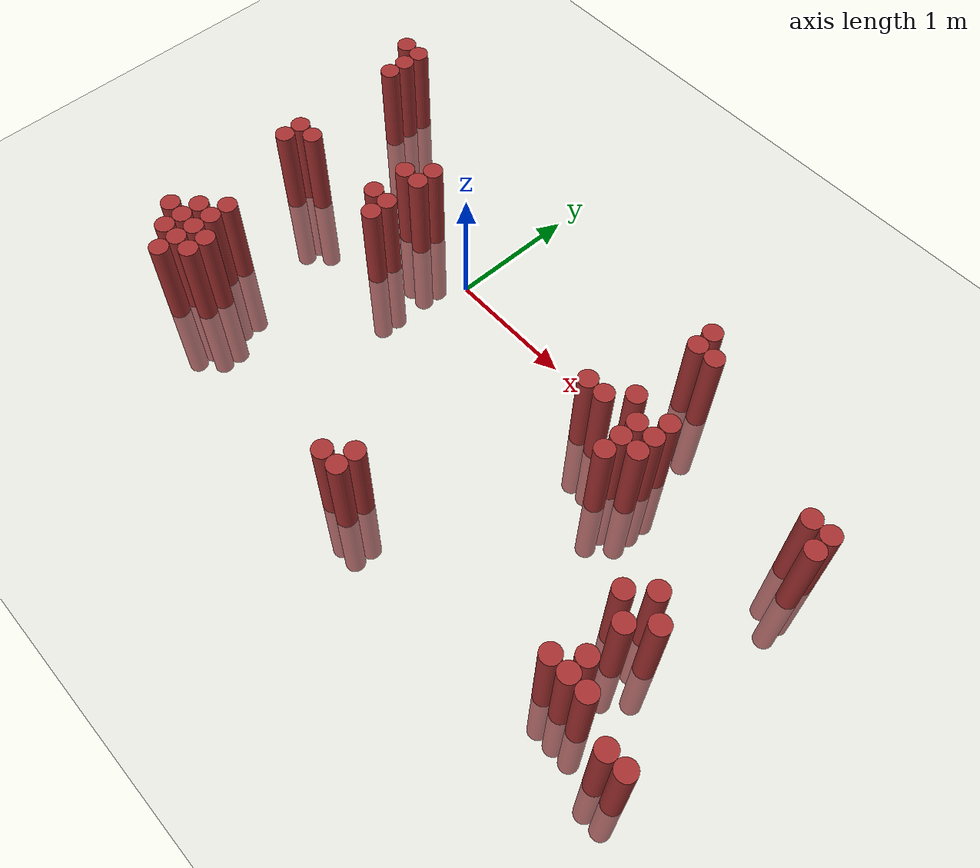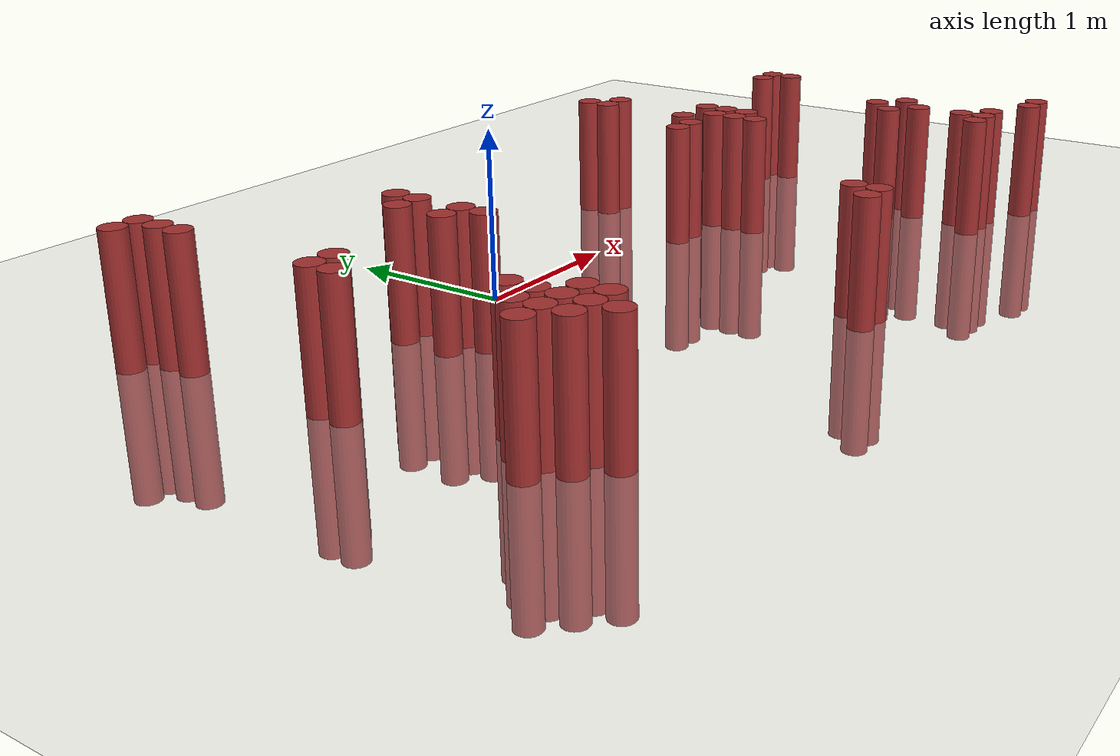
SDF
<sdf version="1.6">
 <world name="default">
  <model name="ground_plane">
   <static>1</static>
   <link name="link">
    <collision name="collision">
     <geometry><plane><normal>0 0 1</normal><size>100 100</size></plane></geometry>
     <surface><friction><ode><mu>100</mu><mu2>50</mu2></ode></friction></surface>
    </collision>
    <visual name="visual">
     <cast_shadows>0</cast_shadows>
     <geometry><plane><normal>0 0 1</normal><size>100 100</size></plane></geometry>
     <material>
      <script><uri>file://media/materials/scripts/gazebo.material</uri><name>Gazebo/Grey</name></script>
     </material>
    </visual>
   </link>
  </model>
  <model name="unit_cylinder_319">
   <static>1</static>
   <pose>-1.775000 0.925000 0.000000 0.000000 0.000000 0.000000</pose>
   <link name="link">
    <inertial>
     <mass>1</mass>
     <inertia><ixx>0.145833</ixx><ixy>0</ixy><ixz>0</ixz><iyy>0.145833</iyy><iyz>0</iyz><izz>0.125</izz></inertia>
    </inertial>
    <collision name="collision">
     <geometry><cylinder><radius>0.075000</radius><length>1.5</length></cylinder></geometry>
    </collision>
    <visual name="visual">
     <geometry><cylinder><radius>0.075000</radius><length>1.5</length></cylinder></geometry>
     <material>
      <ambient>0.648000 0.192000 0.192000 1</ambient>
      <diffuse>0.648000 0.192000 0.192000 1</diffuse>
     </material>
     <material>
      <script><name>Gazebo/Grey</name><uri>file://media/materials/scripts/gazebo.material</uri></script>
     </material>
    </visual>
   </link>
  </model>
  <model name="unit_cylinder_322">
   <static>1</static>
   <pose>-1.625000 -1.475000 0.000000 0.000000 0.000000 0.000000</pose>
   <link name="link">
    <inertial>
     <mass>1</mass>
     <inertia><ixx>0.145833</ixx><ixy>0</ixy><ixz>0</ixz><iyy>0.145833</iyy><iyz>0</iyz><izz>0.125</izz></inertia>
    </inertial>
    <collision name="collision">
     <geometry><cylinder><radius>0.075000</radius><length>1.5</length></cylinder></geometry>
    </collision>
    <visual name="visual">
     <geometry><cylinder><radius>0.075000</radius><length>1.5</length></cylinder></geometry>
     <material>
      <ambient>0.648000 0.192000 0.192000 1</ambient>
      <diffuse>0.648000 0.192000 0.192000 1</diffuse>
     </material>
     <material>
      <script><name>Gazebo/Grey</name><uri>file://media/materials/scripts/gazebo.material</uri></script>
     </material>
    </visual>
   </link>
  </model>
  <model name="unit_cylinder_323">
   <static>1</static>
   <pose>-1.625000 -0.425000 0.000000 0.000000 0.000000 0.000000</pose>
   <link name="link">
    <inertial>
     <mass>1</mass>
     <inertia><ixx>0.145833</ixx><ixy>0</ixy><ixz>0</ixz><iyy>0.145833</iyy><iyz>0</iyz><izz>0.125</izz></inertia>
    </inertial>
    <collision name="collision">
     <geometry><cylinder><radius>0.075000</radius><length>1.5</length></cylinder></geometry>
    </collision>
    <visual name="visual">
     <geometry><cylinder><radius>0.075000</radius><length>1.5</length></cylinder></geometry>
     <material>
      <ambient>0.648000 0.192000 0.192000 1</ambient>
      <diffuse>0.648000 0.192000 0.192000 1</diffuse>
     </material>
     <material>
      <script><name>Gazebo/Grey</name><uri>file://media/materials/scripts/gazebo.material</uri></script>
     </material>
    </visual>
   </link>
  </model>
  <model name="unit_cylinder_324">
   <static>1</static>
   <pose>-1.625000 -0.275000 0.000000 0.000000 0.000000 0.000000</pose>
   <link name="link">
    <inertial>
     <mass>1</mass>
     <inertia><ixx>0.145833</ixx><ixy>0</ixy><ixz>0</ixz><iyy>0.145833</iyy><iyz>0</iyz><izz>0.125</izz></inertia>
    </inertial>
    <collision name="collision">
     <geometry><cylinder><radius>0.075000</radius><length>1.5</length></cylinder></geometry>
    </collision>
    <visual name="visual">
     <geometry><cylinder><radius>0.075000</radius><length>1.5</length></cylinder></geometry>
     <material>
      <ambient>0.648000 0.192000 0.192000 1</ambient>
      <diffuse>0.648000 0.192000 0.192000 1</diffuse>
     </material>
     <material>
      <script><name>Gazebo/Grey</name><uri>file://media/materials/scripts/gazebo.material</uri></script>
     </material>
    </visual>
   </link>
  </model>
  <model name="unit_cylinder_325">
   <static>1</static>
   <pose>-1.625000 0.625000 0.000000 0.000000 0.000000 0.000000</pose>
   <link name="link">
    <inertial>
     <mass>1</mass>
     <inertia><ixx>0.145833</ixx><ixy>0</ixy><ixz>0</ixz><iyy>0.145833</iyy><iyz>0</iyz><izz>0.125</izz></inertia>
    </inertial>
    <collision name="collision">
     <geometry><cylinder><radius>0.075000</radius><length>1.5</length></cylinder></geometry>
    </collision>
    <visual name="visual">
     <geometry><cylinder><radius>0.075000</radius><length>1.5</length></cylinder></geometry>
     <material>
      <ambient>0.648000 0.192000 0.192000 1</ambient>
      <diffuse>0.648000 0.192000 0.192000 1</diffuse>
     </material>
     <material>
      <script><name>Gazebo/Grey</name><uri>file://media/materials/scripts/gazebo.material</uri></script>
     </material>
    </visual>
   </link>
  </model>
  <model name="unit_cylinder_326">
   <static>1</static>
   <pose>-1.625000 0.775000 0.000000 0.000000 0.000000 0.000000</pose>
   <link name="link">
    <inertial>
     <mass>1</mass>
     <inertia><ixx>0.145833</ixx><ixy>0</ixy><ixz>0</ixz><iyy>0.145833</iyy><iyz>0</iyz><izz>0.125</izz></inertia>
    </inertial>
    <collision name="collision">
     <geometry><cylinder><radius>0.075000</radius><length>1.5</length></cylinder></geometry>
    </collision>
    <visual name="visual">
     <geometry><cylinder><radius>0.075000</radius><length>1.5</length></cylinder></geometry>
     <material>
      <ambient>0.648000 0.192000 0.192000 1</ambient>
      <diffuse>0.648000 0.192000 0.192000 1</diffuse>
     </material>
     <material>
      <script><name>Gazebo/Grey</name><uri>file://media/materials/scripts/gazebo.material</uri></script>
     </material>
    </visual>
   </link>
  </model>
  <model name="unit_cylinder_327">
   <static>1</static>
   <pose>-1.625000 0.925000 0.000000 0.000000 0.000000 0.000000</pose>
   <link name="link">
    <inertial>
     <mass>1</mass>
     <inertia><ixx>0.145833</ixx><ixy>0</ixy><ixz>0</ixz><iyy>0.145833</iyy><iyz>0</iyz><izz>0.125</izz></inertia>
    </inertial>
    <collision name="collision">
     <geometry><cylinder><radius>0.075000</radius><length>1.5</length></cylinder></geometry>
    </collision>
    <visual name="visual">
     <geometry><cylinder><radius>0.075000</radius><length>1.5</length></cylinder></geometry>
     <material>
      <ambient>0.648000 0.192000 0.192000 1</ambient>
      <diffuse>0.648000 0.192000 0.192000 1</diffuse>
     </material>
     <material>
      <script><name>Gazebo/Grey</name><uri>file://media/materials/scripts/gazebo.material</uri></script>
     </material>
    </visual>
   </link>
  </model>
  <model name="unit_cylinder_330">
   <static>1</static>
   <pose>-1.475000 -1.625000 0.000000 0.000000 0.000000 0.000000</pose>
   <link name="link">
    <inertial>
     <mass>1</mass>
     <inertia><ixx>0.145833</ixx><ixy>0</ixy><ixz>0</ixz><iyy>0.145833</iyy><iyz>0</iyz><izz>0.125</izz></inertia>
    </inertial>
    <collision name="collision">
     <geometry><cylinder><radius>0.075000</radius><length>1.5</length></cylinder></geometry>
    </collision>
    <visual name="visual">
     <geometry><cylinder><radius>0.075000</radius><length>1.5</length></cylinder></geometry>
     <material>
      <ambient>0.648000 0.192000 0.192000 1</ambient>
      <diffuse>0.648000 0.192000 0.192000 1</diffuse>
     </material>
     <material>
      <script><name>Gazebo/Grey</name><uri>file://media/materials/scripts/gazebo.material</uri></script>
     </material>
    </visual>
   </link>
  </model>
  <model name="unit_cylinder_331">
   <static>1</static>
   <pose>-1.475000 -1.475000 0.000000 0.000000 0.000000 0.000000</pose>
   <link name="link">
    <inertial>
     <mass>1</mass>
     <inertia><ixx>0.145833</ixx><ixy>0</ixy><ixz>0</ixz><iyy>0.145833</iyy><iyz>0</iyz><izz>0.125</izz></inertia>
    </inertial>
    <collision name="collision">
     <geometry><cylinder><radius>0.075000</radius><length>1.5</length></cylinder></geometry>
    </collision>
    <visual name="visual">
     <geometry><cylinder><radius>0.075000</radius><length>1.5</length></cylinder></geometry>
     <material>
      <ambient>0.648000 0.192000 0.192000 1</ambient>
      <diffuse>0.648000 0.192000 0.192000 1</diffuse>
     </material>
     <material>
      <script><name>Gazebo/Grey</name><uri>file://media/materials/scripts/gazebo.material</uri></script>
     </material>
    </visual>
   </link>
  </model>
  <model name="unit_cylinder_332">
   <static>1</static>
   <pose>-1.475000 -1.325000 0.000000 0.000000 0.000000 0.000000</pose>
   <link name="link">
    <inertial>
     <mass>1</mass>
     <inertia><ixx>0.145833</ixx><ixy>0</ixy><ixz>0</ixz><iyy>0.145833</iyy><iyz>0</iyz><izz>0.125</izz></inertia>
    </inertial>
    <collision name="collision">
     <geometry><cylinder><radius>0.075000</radius><length>1.5</length></cylinder></geometry>
    </collision>
    <visual name="visual">
     <geometry><cylinder><radius>0.075000</radius><length>1.5</length></cylinder></geometry>
     <material>
      <ambient>0.648000 0.192000 0.192000 1</ambient>
      <diffuse>0.648000 0.192000 0.192000 1</diffuse>
     </material>
     <material>
      <script><name>Gazebo/Grey</name><uri>file://media/materials/scripts/gazebo.material</uri></script>
     </material>
    </visual>
   </link>
  </model>
  <model name="unit_cylinder_333">
   <static>1</static>
   <pose>-1.475000 -0.275000 0.000000 0.000000 0.000000 0.000000</pose>
   <link name="link">
    <inertial>
     <mass>1</mass>
     <inertia><ixx>0.145833</ixx><ixy>0</ixy><ixz>0</ixz><iyy>0.145833</iyy><iyz>0</iyz><izz>0.125</izz></inertia>
    </inertial>
    <collision name="collision">
     <geometry><cylinder><radius>0.075000</radius><length>1.5</length></cylinder></geometry>
    </collision>
    <visual name="visual">
     <geometry><cylinder><radius>0.075000</radius><length>1.5</length></cylinder></geometry>
     <material>
      <ambient>0.648000 0.192000 0.192000 1</ambient>
      <diffuse>0.648000 0.192000 0.192000 1</diffuse>
     </material>
     <material>
      <script><name>Gazebo/Grey</name><uri>file://media/materials/scripts/gazebo.material</uri></script>
     </material>
    </visual>
   </link>
  </model>
  <model name="unit_cylinder_336">
   <static>1</static>
   <pose>-1.325000 -1.775000 0.000000 0.000000 0.000000 0.000000</pose>
   <link name="link">
    <inertial>
     <mass>1</mass>
     <inertia><ixx>0.145833</ixx><ixy>0</ixy><ixz>0</ixz><iyy>0.145833</iyy><iyz>0</iyz><izz>0.125</izz></inertia>
    </inertial>
    <collision name="collision">
     <geometry><cylinder><radius>0.075000</radius><length>1.5</length></cylinder></geometry>
    </collision>
    <visual name="visual">
     <geometry><cylinder><radius>0.075000</radius><length>1.5</length></cylinder></geometry>
     <material>
      <ambient>0.648000 0.192000 0.192000 1</ambient>
      <diffuse>0.648000 0.192000 0.192000 1</diffuse>
     </material>
     <material>
      <script><name>Gazebo/Grey</name><uri>file://media/materials/scripts/gazebo.material</uri></script>
     </material>
    </visual>
   </link>
  </model>
  <model name="unit_cylinder_337">
   <static>1</static>
   <pose>-1.325000 -1.625000 0.000000 0.000000 0.000000 0.000000</pose>
   <link name="link">
    <inertial>
     <mass>1</mass>
     <inertia><ixx>0.145833</ixx><ixy>0</ixy><ixz>0</ixz><iyy>0.145833</iyy><iyz>0</iyz><izz>0.125</izz></inertia>
    </inertial>
    <collision name="collision">
     <geometry><cylinder><radius>0.075000</radius><length>1.5</length></cylinder></geometry>
    </collision>
    <visual name="visual">
     <geometry><cylinder><radius>0.075000</radius><length>1.5</length></cylinder></geometry>
     <material>
      <ambient>0.648000 0.192000 0.192000 1</ambient>
      <diffuse>0.648000 0.192000 0.192000 1</diffuse>
     </material>
     <material>
      <script><name>Gazebo/Grey</name><uri>file://media/materials/scripts/gazebo.material</uri></script>
     </material>
    </visual>
   </link>
  </model>
  <model name="unit_cylinder_338">
   <static>1</static>
   <pose>-1.325000 -1.475000 0.000000 0.000000 0.000000 0.000000</pose>
   <link name="link">
    <inertial>
     <mass>1</mass>
     <inertia><ixx>0.145833</ixx><ixy>0</ixy><ixz>0</ixz><iyy>0.145833</iyy><iyz>0</iyz><izz>0.125</izz></inertia>
    </inertial>
    <collision name="collision">
     <geometry><cylinder><radius>0.075000</radius><length>1.5</length></cylinder></geometry>
    </collision>
    <visual name="visual">
     <geometry><cylinder><radius>0.075000</radius><length>1.5</length></cylinder></geometry>
     <material>
      <ambient>0.648000 0.192000 0.192000 1</ambient>
      <diffuse>0.648000 0.192000 0.192000 1</diffuse>
     </material>
     <material>
      <script><name>Gazebo/Grey</name><uri>file://media/materials/scripts/gazebo.material</uri></script>
     </material>
    </visual>
   </link>
  </model>
  <model name="unit_cylinder_339">
   <static>1</static>
   <pose>-1.325000 -1.325000 0.000000 0.000000 0.000000 0.000000</pose>
   <link name="link">
    <inertial>
     <mass>1</mass>
     <inertia><ixx>0.145833</ixx><ixy>0</ixy><ixz>0</ixz><iyy>0.145833</iyy><iyz>0</iyz><izz>0.125</izz></inertia>
    </inertial>
    <collision name="collision">
     <geometry><cylinder><radius>0.075000</radius><length>1.5</length></cylinder></geometry>
    </collision>
    <visual name="visual">
     <geometry><cylinder><radius>0.075000</radius><length>1.5</length></cylinder></geometry>
     <material>
      <ambient>0.648000 0.192000 0.192000 1</ambient>
      <diffuse>0.648000 0.192000 0.192000 1</diffuse>
     </material>
     <material>
      <script><name>Gazebo/Grey</name><uri>file://media/materials/scripts/gazebo.material</uri></script>
     </material>
    </visual>
   </link>
  </model>
  <model name="unit_cylinder_340">
   <static>1</static>
   <pose>-1.325000 -1.175000 0.000000 0.000000 0.000000 0.000000</pose>
   <link name="link">
    <inertial>
     <mass>1</mass>
     <inertia><ixx>0.145833</ixx><ixy>0</ixy><ixz>0</ixz><iyy>0.145833</iyy><iyz>0</iyz><izz>0.125</izz></inertia>
    </inertial>
    <collision name="collision">
     <geometry><cylinder><radius>0.075000</radius><length>1.5</length></cylinder></geometry>
    </collision>
    <visual name="visual">
     <geometry><cylinder><radius>0.075000</radius><length>1.5</length></cylinder></geometry>
     <material>
      <ambient>0.648000 0.192000 0.192000 1</ambient>
      <diffuse>0.648000 0.192000 0.192000 1</diffuse>
     </material>
     <material>
      <script><name>Gazebo/Grey</name><uri>file://media/materials/scripts/gazebo.material</uri></script>
     </material>
    </visual>
   </link>
  </model>
  <model name="unit_cylinder_343">
   <static>1</static>
   <pose>-1.175000 -1.625000 0.000000 0.000000 0.000000 0.000000</pose>
   <link name="link">
    <inertial>
     <mass>1</mass>
     <inertia><ixx>0.145833</ixx><ixy>0</ixy><ixz>0</ixz><iyy>0.145833</iyy><iyz>0</iyz><izz>0.125</izz></inertia>
    </inertial>
    <collision name="collision">
     <geometry><cylinder><radius>0.075000</radius><length>1.5</length></cylinder></geometry>
    </collision>
    <visual name="visual">
     <geometry><cylinder><radius>0.075000</radius><length>1.5</length></cylinder></geometry>
     <material>
      <ambient>0.648000 0.192000 0.192000 1</ambient>
      <diffuse>0.648000 0.192000 0.192000 1</diffuse>
     </material>
     <material>
      <script><name>Gazebo/Grey</name><uri>file://media/materials/scripts/gazebo.material</uri></script>
     </material>
    </visual>
   </link>
  </model>
  <model name="unit_cylinder_344">
   <static>1</static>
   <pose>-1.175000 -1.475000 0.000000 0.000000 0.000000 0.000000</pose>
   <link name="link">
    <inertial>
     <mass>1</mass>
     <inertia><ixx>0.145833</ixx><ixy>0</ixy><ixz>0</ixz><iyy>0.145833</iyy><iyz>0</iyz><izz>0.125</izz></inertia>
    </inertial>
    <collision name="collision">
     <geometry><cylinder><radius>0.075000</radius><length>1.5</length></cylinder></geometry>
    </collision>
    <visual name="visual">
     <geometry><cylinder><radius>0.075000</radius><length>1.5</length></cylinder></geometry>
     <material>
      <ambient>0.648000 0.192000 0.192000 1</ambient>
      <diffuse>0.648000 0.192000 0.192000 1</diffuse>
     </material>
     <material>
      <script><name>Gazebo/Grey</name><uri>file://media/materials/scripts/gazebo.material</uri></script>
     </material>
    </visual>
   </link>
  </model>
  <model name="unit_cylinder_349">
   <static>1</static>
   <pose>-0.725000 -0.275000 0.000000 0.000000 0.000000 0.000000</pose>
   <link name="link">
    <inertial>
     <mass>1</mass>
     <inertia><ixx>0.145833</ixx><ixy>0</ixy><ixz>0</ixz><iyy>0.145833</iyy><iyz>0</iyz><izz>0.125</izz></inertia>
    </inertial>
    <collision name="collision">
     <geometry><cylinder><radius>0.075000</radius><length>1.5</length></cylinder></geometry>
    </collision>
    <visual name="visual">
     <geometry><cylinder><radius>0.075000</radius><length>1.5</length></cylinder></geometry>
     <material>
      <ambient>0.648000 0.192000 0.192000 1</ambient>
      <diffuse>0.648000 0.192000 0.192000 1</diffuse>
     </material>
     <material>
      <script><name>Gazebo/Grey</name><uri>file://media/materials/scripts/gazebo.material</uri></script>
     </material>
    </visual>
   </link>
  </model>
  <model name="unit_cylinder_350">
   <static>1</static>
   <pose>-0.725000 0.025000 0.000000 0.000000 0.000000 0.000000</pose>
   <link name="link">
    <inertial>
     <mass>1</mass>
     <inertia><ixx>0.145833</ixx><ixy>0</ixy><ixz>0</ixz><iyy>0.145833</iyy><iyz>0</iyz><izz>0.125</izz></inertia>
    </inertial>
    <collision name="collision">
     <geometry><cylinder><radius>0.075000</radius><length>1.5</length></cylinder></geometry>
    </collision>
    <visual name="visual">
     <geometry><cylinder><radius>0.075000</radius><length>1.5</length></cylinder></geometry>
     <material>
      <ambient>0.648000 0.192000 0.192000 1</ambient>
      <diffuse>0.648000 0.192000 0.192000 1</diffuse>
     </material>
     <material>
      <script><name>Gazebo/Grey</name><uri>file://media/materials/scripts/gazebo.material</uri></script>
     </material>
    </visual>
   </link>
  </model>
  <model name="unit_cylinder_353">
   <static>1</static>
   <pose>-0.575000 -0.425000 0.000000 0.000000 0.000000 0.000000</pose>
   <link name="link">
    <inertial>
     <mass>1</mass>
     <inertia><ixx>0.145833</ixx><ixy>0</ixy><ixz>0</ixz><iyy>0.145833</iyy><iyz>0</iyz><izz>0.125</izz></inertia>
    </inertial>
    <collision name="collision">
     <geometry><cylinder><radius>0.075000</radius><length>1.5</length></cylinder></geometry>
    </collision>
    <visual name="visual">
     <geometry><cylinder><radius>0.075000</radius><length>1.5</length></cylinder></geometry>
     <material>
      <ambient>0.648000 0.192000 0.192000 1</ambient>
      <diffuse>0.648000 0.192000 0.192000 1</diffuse>
     </material>
     <material>
      <script><name>Gazebo/Grey</name><uri>file://media/materials/scripts/gazebo.material</uri></script>
     </material>
    </visual>
   </link>
  </model>
  <model name="unit_cylinder_354">
   <static>1</static>
   <pose>-0.575000 -0.275000 0.000000 0.000000 0.000000 0.000000</pose>
   <link name="link">
    <inertial>
     <mass>1</mass>
     <inertia><ixx>0.145833</ixx><ixy>0</ixy><ixz>0</ixz><iyy>0.145833</iyy><iyz>0</iyz><izz>0.125</izz></inertia>
    </inertial>
    <collision name="collision">
     <geometry><cylinder><radius>0.075000</radius><length>1.5</length></cylinder></geometry>
    </collision>
    <visual name="visual">
     <geometry><cylinder><radius>0.075000</radius><length>1.5</length></cylinder></geometry>
     <material>
      <ambient>0.648000 0.192000 0.192000 1</ambient>
      <diffuse>0.648000 0.192000 0.192000 1</diffuse>
     </material>
     <material>
      <script><name>Gazebo/Grey</name><uri>file://media/materials/scripts/gazebo.material</uri></script>
     </material>
    </visual>
   </link>
  </model>
  <model name="unit_cylinder_355">
   <static>1</static>
   <pose>-0.575000 0.025000 0.000000 0.000000 0.000000 0.000000</pose>
   <link name="link">
    <inertial>
     <mass>1</mass>
     <inertia><ixx>0.145833</ixx><ixy>0</ixy><ixz>0</ixz><iyy>0.145833</iyy><iyz>0</iyz><izz>0.125</izz></inertia>
    </inertial>
    <collision name="collision">
     <geometry><cylinder><radius>0.075000</radius><length>1.5</length></cylinder></geometry>
    </collision>
    <visual name="visual">
     <geometry><cylinder><radius>0.075000</radius><length>1.5</length></cylinder></geometry>
     <material>
      <ambient>0.648000 0.192000 0.192000 1</ambient>
      <diffuse>0.648000 0.192000 0.192000 1</diffuse>
     </material>
     <material>
      <script><name>Gazebo/Grey</name><uri>file://media/materials/scripts/gazebo.material</uri></script>
     </material>
    </visual>
   </link>
  </model>
  <model name="unit_cylinder_356">
   <static>1</static>
   <pose>-0.575000 0.175000 0.000000 0.000000 0.000000 0.000000</pose>
   <link name="link">
    <inertial>
     <mass>1</mass>
     <inertia><ixx>0.145833</ixx><ixy>0</ixy><ixz>0</ixz><iyy>0.145833</iyy><iyz>0</iyz><izz>0.125</izz></inertia>
    </inertial>
    <collision name="collision">
     <geometry><cylinder><radius>0.075000</radius><length>1.5</length></cylinder></geometry>
    </collision>
    <visual name="visual">
     <geometry><cylinder><radius>0.075000</radius><length>1.5</length></cylinder></geometry>
     <material>
      <ambient>0.648000 0.192000 0.192000 1</ambient>
      <diffuse>0.648000 0.192000 0.192000 1</diffuse>
     </material>
     <material>
      <script><name>Gazebo/Grey</name><uri>file://media/materials/scripts/gazebo.material</uri></script>
     </material>
    </visual>
   </link>
  </model>
  <model name="unit_cylinder_371">
   <static>1</static>
   <pose>0.775000 -1.925000 0.000000 0.000000 0.000000 0.000000</pose>
   <link name="link">
    <inertial>
     <mass>1</mass>
     <inertia><ixx>0.145833</ixx><ixy>0</ixy><ixz>0</ixz><iyy>0.145833</iyy><iyz>0</iyz><izz>0.125</izz></inertia>
    </inertial>
    <collision name="collision">
     <geometry><cylinder><radius>0.075000</radius><length>1.5</length></cylinder></geometry>
    </collision>
    <visual name="visual">
     <geometry><cylinder><radius>0.075000</radius><length>1.5</length></cylinder></geometry>
     <material>
      <ambient>0.648000 0.192000 0.192000 1</ambient>
      <diffuse>0.648000 0.192000 0.192000 1</diffuse>
     </material>
     <material>
      <script><name>Gazebo/Grey</name><uri>file://media/materials/scripts/gazebo.material</uri></script>
     </material>
    </visual>
   </link>
  </model>
  <model name="unit_cylinder_374">
   <static>1</static>
   <pose>0.925000 -1.925000 0.000000 0.000000 0.000000 0.000000</pose>
   <link name="link">
    <inertial>
     <mass>1</mass>
     <inertia><ixx>0.145833</ixx><ixy>0</ixy><ixz>0</ixz><iyy>0.145833</iyy><iyz>0</iyz><izz>0.125</izz></inertia>
    </inertial>
    <collision name="collision">
     <geometry><cylinder><radius>0.075000</radius><length>1.5</length></cylinder></geometry>
    </collision>
    <visual name="visual">
     <geometry><cylinder><radius>0.075000</radius><length>1.5</length></cylinder></geometry>
     <material>
      <ambient>0.648000 0.192000 0.192000 1</ambient>
      <diffuse>0.648000 0.192000 0.192000 1</diffuse>
     </material>
     <material>
      <script><name>Gazebo/Grey</name><uri>file://media/materials/scripts/gazebo.material</uri></script>
     </material>
    </visual>
   </link>
  </model>
  <model name="unit_cylinder_375">
   <static>1</static>
   <pose>0.925000 -1.775000 0.000000 0.000000 0.000000 0.000000</pose>
   <link name="link">
    <inertial>
     <mass>1</mass>
     <inertia><ixx>0.145833</ixx><ixy>0</ixy><ixz>0</ixz><iyy>0.145833</iyy><iyz>0</iyz><izz>0.125</izz></inertia>
    </inertial>
    <collision name="collision">
     <geometry><cylinder><radius>0.075000</radius><length>1.5</length></cylinder></geometry>
    </collision>
    <visual name="visual">
     <geometry><cylinder><radius>0.075000</radius><length>1.5</length></cylinder></geometry>
     <material>
      <ambient>0.648000 0.192000 0.192000 1</ambient>
      <diffuse>0.648000 0.192000 0.192000 1</diffuse>
     </material>
     <material>
      <script><name>Gazebo/Grey</name><uri>file://media/materials/scripts/gazebo.material</uri></script>
     </material>
    </visual>
   </link>
  </model>
  <model name="unit_cylinder_393">
   <static>1</static>
   <pose>1.525000 -0.275000 0.000000 0.000000 0.000000 0.000000</pose>
   <link name="link">
    <inertial>
     <mass>1</mass>
     <inertia><ixx>0.145833</ixx><ixy>0</ixy><ixz>0</ixz><iyy>0.145833</iyy><iyz>0</iyz><izz>0.125</izz></inertia>
    </inertial>
    <collision name="collision">
     <geometry><cylinder><radius>0.075000</radius><length>1.5</length></cylinder></geometry>
    </collision>
    <visual name="visual">
     <geometry><cylinder><radius>0.075000</radius><length>1.5</length></cylinder></geometry>
     <material>
      <ambient>0.648000 0.192000 0.192000 1</ambient>
      <diffuse>0.648000 0.192000 0.192000 1</diffuse>
     </material>
     <material>
      <script><name>Gazebo/Grey</name><uri>file://media/materials/scripts/gazebo.material</uri></script>
     </material>
    </visual>
   </link>
  </model>
  <model name="unit_cylinder_396">
   <static>1</static>
   <pose>1.675000 -0.275000 0.000000 0.000000 0.000000 0.000000</pose>
   <link name="link">
    <inertial>
     <mass>1</mass>
     <inertia><ixx>0.145833</ixx><ixy>0</ixy><ixz>0</ixz><iyy>0.145833</iyy><iyz>0</iyz><izz>0.125</izz></inertia>
    </inertial>
    <collision name="collision">
     <geometry><cylinder><radius>0.075000</radius><length>1.5</length></cylinder></geometry>
    </collision>
    <visual name="visual">
     <geometry><cylinder><radius>0.075000</radius><length>1.5</length></cylinder></geometry>
     <material>
      <ambient>0.648000 0.192000 0.192000 1</ambient>
      <diffuse>0.648000 0.192000 0.192000 1</diffuse>
     </material>
     <material>
      <script><name>Gazebo/Grey</name><uri>file://media/materials/scripts/gazebo.material</uri></script>
     </material>
    </visual>
   </link>
  </model>
  <model name="unit_cylinder_398">
   <static>1</static>
   <pose>1.825000 -0.125000 0.000000 0.000000 0.000000 0.000000</pose>
   <link name="link">
    <inertial>
     <mass>1</mass>
     <inertia><ixx>0.145833</ixx><ixy>0</ixy><ixz>0</ixz><iyy>0.145833</iyy><iyz>0</iyz><izz>0.125</izz></inertia>
    </inertial>
    <collision name="collision">
     <geometry><cylinder><radius>0.075000</radius><length>1.5</length></cylinder></geometry>
    </collision>
    <visual name="visual">
     <geometry><cylinder><radius>0.075000</radius><length>1.5</length></cylinder></geometry>
     <material>
      <ambient>0.648000 0.192000 0.192000 1</ambient>
      <diffuse>0.648000 0.192000 0.192000 1</diffuse>
     </material>
     <material>
      <script><name>Gazebo/Grey</name><uri>file://media/materials/scripts/gazebo.material</uri></script>
     </material>
    </visual>
   </link>
  </model>
  <model name="unit_cylinder_399">
   <static>1</static>
   <pose>1.825000 0.475000 0.000000 0.000000 0.000000 0.000000</pose>
   <link name="link">
    <inertial>
     <mass>1</mass>
     <inertia><ixx>0.145833</ixx><ixy>0</ixy><ixz>0</ixz><iyy>0.145833</iyy><iyz>0</iyz><izz>0.125</izz></inertia>
    </inertial>
    <collision name="collision">
     <geometry><cylinder><radius>0.075000</radius><length>1.5</length></cylinder></geometry>
    </collision>
    <visual name="visual">
     <geometry><cylinder><radius>0.075000</radius><length>1.5</length></cylinder></geometry>
     <material>
      <ambient>0.648000 0.192000 0.192000 1</ambient>
      <diffuse>0.648000 0.192000 0.192000 1</diffuse>
     </material>
     <material>
      <script><name>Gazebo/Grey</name><uri>file://media/materials/scripts/gazebo.material</uri></script>
     </material>
    </visual>
   </link>
  </model>
  <model name="unit_cylinder_400">
   <static>1</static>
   <pose>1.825000 0.625000 0.000000 0.000000 0.000000 0.000000</pose>
   <link name="link">
    <inertial>
     <mass>1</mass>
     <inertia><ixx>0.145833</ixx><ixy>0</ixy><ixz>0</ixz><iyy>0.145833</iyy><iyz>0</iyz><izz>0.125</izz></inertia>
    </inertial>
    <collision name="collision">
     <geometry><cylinder><radius>0.075000</radius><length>1.5</length></cylinder></geometry>
    </collision>
    <visual name="visual">
     <geometry><cylinder><radius>0.075000</radius><length>1.5</length></cylinder></geometry>
     <material>
      <ambient>0.648000 0.192000 0.192000 1</ambient>
      <diffuse>0.648000 0.192000 0.192000 1</diffuse>
     </material>
     <material>
      <script><name>Gazebo/Grey</name><uri>file://media/materials/scripts/gazebo.material</uri></script>
     </material>
    </visual>
   </link>
  </model>
  <model name="unit_cylinder_402">
   <static>1</static>
   <pose>1.975000 -0.575000 0.000000 0.000000 0.000000 0.000000</pose>
   <link name="link">
    <inertial>
     <mass>1</mass>
     <inertia><ixx>0.145833</ixx><ixy>0</ixy><ixz>0</ixz><iyy>0.145833</iyy><iyz>0</iyz><izz>0.125</izz></inertia>
    </inertial>
    <collision name="collision">
     <geometry><cylinder><radius>0.075000</radius><length>1.5</length></cylinder></geometry>
    </collision>
    <visual name="visual">
     <geometry><cylinder><radius>0.075000</radius><length>1.5</length></cylinder></geometry>
     <material>
      <ambient>0.648000 0.192000 0.192000 1</ambient>
      <diffuse>0.648000 0.192000 0.192000 1</diffuse>
     </material>
     <material>
      <script><name>Gazebo/Grey</name><uri>file://media/materials/scripts/gazebo.material</uri></script>
     </material>
    </visual>
   </link>
  </model>
  <model name="unit_cylinder_403">
   <static>1</static>
   <pose>1.975000 -0.425000 0.000000 0.000000 0.000000 0.000000</pose>
   <link name="link">
    <inertial>
     <mass>1</mass>
     <inertia><ixx>0.145833</ixx><ixy>0</ixy><ixz>0</ixz><iyy>0.145833</iyy><iyz>0</iyz><izz>0.125</izz></inertia>
    </inertial>
    <collision name="collision">
     <geometry><cylinder><radius>0.075000</radius><length>1.5</length></cylinder></geometry>
    </collision>
    <visual name="visual">
     <geometry><cylinder><radius>0.075000</radius><length>1.5</length></cylinder></geometry>
     <material>
      <ambient>0.648000 0.192000 0.192000 1</ambient>
      <diffuse>0.648000 0.192000 0.192000 1</diffuse>
     </material>
     <material>
      <script><name>Gazebo/Grey</name><uri>file://media/materials/scripts/gazebo.material</uri></script>
     </material>
    </visual>
   </link>
  </model>
  <model name="unit_cylinder_404">
   <static>1</static>
   <pose>1.975000 -0.275000 0.000000 0.000000 0.000000 0.000000</pose>
   <link name="link">
    <inertial>
     <mass>1</mass>
     <inertia><ixx>0.145833</ixx><ixy>0</ixy><ixz>0</ixz><iyy>0.145833</iyy><iyz>0</iyz><izz>0.125</izz></inertia>
    </inertial>
    <collision name="collision">
     <geometry><cylinder><radius>0.075000</radius><length>1.5</length></cylinder></geometry>
    </collision>
    <visual name="visual">
     <geometry><cylinder><radius>0.075000</radius><length>1.5</length></cylinder></geometry>
     <material>
      <ambient>0.648000 0.192000 0.192000 1</ambient>
      <diffuse>0.648000 0.192000 0.192000 1</diffuse>
     </material>
     <material>
      <script><name>Gazebo/Grey</name><uri>file://media/materials/scripts/gazebo.material</uri></script>
     </material>
    </visual>
   </link>
  </model>
  <model name="unit_cylinder_405">
   <static>1</static>
   <pose>1.975000 0.475000 0.000000 0.000000 0.000000 0.000000</pose>
   <link name="link">
    <inertial>
     <mass>1</mass>
     <inertia><ixx>0.145833</ixx><ixy>0</ixy><ixz>0</ixz><iyy>0.145833</iyy><iyz>0</iyz><izz>0.125</izz></inertia>
    </inertial>
    <collision name="collision">
     <geometry><cylinder><radius>0.075000</radius><length>1.5</length></cylinder></geometry>
    </collision>
    <visual name="visual">
     <geometry><cylinder><radius>0.075000</radius><length>1.5</length></cylinder></geometry>
     <material>
      <ambient>0.648000 0.192000 0.192000 1</ambient>
      <diffuse>0.648000 0.192000 0.192000 1</diffuse>
     </material>
     <material>
      <script><name>Gazebo/Grey</name><uri>file://media/materials/scripts/gazebo.material</uri></script>
     </material>
    </visual>
   </link>
  </model>
  <model name="unit_cylinder_408">
   <static>1</static>
   <pose>2.125000 -0.425000 0.000000 0.000000 0.000000 0.000000</pose>
   <link name="link">
    <inertial>
     <mass>1</mass>
     <inertia><ixx>0.145833</ixx><ixy>0</ixy><ixz>0</ixz><iyy>0.145833</iyy><iyz>0</iyz><izz>0.125</izz></inertia>
    </inertial>
    <collision name="collision">
     <geometry><cylinder><radius>0.075000</radius><length>1.5</length></cylinder></geometry>
    </collision>
    <visual name="visual">
     <geometry><cylinder><radius>0.075000</radius><length>1.5</length></cylinder></geometry>
     <material>
      <ambient>0.648000 0.192000 0.192000 1</ambient>
      <diffuse>0.648000 0.192000 0.192000 1</diffuse>
     </material>
     <material>
      <script><name>Gazebo/Grey</name><uri>file://media/materials/scripts/gazebo.material</uri></script>
     </material>
    </visual>
   </link>
  </model>
  <model name="unit_cylinder_409">
   <static>1</static>
   <pose>2.125000 -0.275000 0.000000 0.000000 0.000000 0.000000</pose>
   <link name="link">
    <inertial>
     <mass>1</mass>
     <inertia><ixx>0.145833</ixx><ixy>0</ixy><ixz>0</ixz><iyy>0.145833</iyy><iyz>0</iyz><izz>0.125</izz></inertia>
    </inertial>
    <collision name="collision">
     <geometry><cylinder><radius>0.075000</radius><length>1.5</length></cylinder></geometry>
    </collision>
    <visual name="visual">
     <geometry><cylinder><radius>0.075000</radius><length>1.5</length></cylinder></geometry>
     <material>
      <ambient>0.648000 0.192000 0.192000 1</ambient>
      <diffuse>0.648000 0.192000 0.192000 1</diffuse>
     </material>
     <material>
      <script><name>Gazebo/Grey</name><uri>file://media/materials/scripts/gazebo.material</uri></script>
     </material>
    </visual>
   </link>
  </model>
  <model name="unit_cylinder_410">
   <static>1</static>
   <pose>2.125000 -0.125000 0.000000 0.000000 0.000000 0.000000</pose>
   <link name="link">
    <inertial>
     <mass>1</mass>
     <inertia><ixx>0.145833</ixx><ixy>0</ixy><ixz>0</ixz><iyy>0.145833</iyy><iyz>0</iyz><izz>0.125</izz></inertia>
    </inertial>
    <collision name="collision">
     <geometry><cylinder><radius>0.075000</radius><length>1.5</length></cylinder></geometry>
    </collision>
    <visual name="visual">
     <geometry><cylinder><radius>0.075000</radius><length>1.5</length></cylinder></geometry>
     <material>
      <ambient>0.648000 0.192000 0.192000 1</ambient>
      <diffuse>0.648000 0.192000 0.192000 1</diffuse>
     </material>
     <material>
      <script><name>Gazebo/Grey</name><uri>file://media/materials/scripts/gazebo.material</uri></script>
     </material>
    </visual>
   </link>
  </model>
  <model name="unit_cylinder_419">
   <static>1</static>
   <pose>2.725000 -1.775000 0.000000 0.000000 0.000000 0.000000</pose>
   <link name="link">
    <inertial>
     <mass>1</mass>
     <inertia><ixx>0.145833</ixx><ixy>0</ixy><ixz>0</ixz><iyy>0.145833</iyy><iyz>0</iyz><izz>0.125</izz></inertia>
    </inertial>
    <collision name="collision">
     <geometry><cylinder><radius>0.075000</radius><length>1.5</length></cylinder></geometry>
    </collision>
    <visual name="visual">
     <geometry><cylinder><radius>0.075000</radius><length>1.5</length></cylinder></geometry>
     <material>
      <ambient>0.648000 0.192000 0.192000 1</ambient>
      <diffuse>0.648000 0.192000 0.192000 1</diffuse>
     </material>
     <material>
      <script><name>Gazebo/Grey</name><uri>file://media/materials/scripts/gazebo.material</uri></script>
     </material>
    </visual>
   </link>
  </model>
  <model name="unit_cylinder_420">
   <static>1</static>
   <pose>2.725000 -1.175000 0.000000 0.000000 0.000000 0.000000</pose>
   <link name="link">
    <inertial>
     <mass>1</mass>
     <inertia><ixx>0.145833</ixx><ixy>0</ixy><ixz>0</ixz><iyy>0.145833</iyy><iyz>0</iyz><izz>0.125</izz></inertia>
    </inertial>
    <collision name="collision">
     <geometry><cylinder><radius>0.075000</radius><length>1.5</length></cylinder></geometry>
    </collision>
    <visual name="visual">
     <geometry><cylinder><radius>0.075000</radius><length>1.5</length></cylinder></geometry>
     <material>
      <ambient>0.648000 0.192000 0.192000 1</ambient>
      <diffuse>0.648000 0.192000 0.192000 1</diffuse>
     </material>
     <material>
      <script><name>Gazebo/Grey</name><uri>file://media/materials/scripts/gazebo.material</uri></script>
     </material>
    </visual>
   </link>
  </model>
  <model name="unit_cylinder_424">
   <static>1</static>
   <pose>2.875000 -1.775000 0.000000 0.000000 0.000000 0.000000</pose>
   <link name="link">
    <inertial>
     <mass>1</mass>
     <inertia><ixx>0.145833</ixx><ixy>0</ixy><ixz>0</ixz><iyy>0.145833</iyy><iyz>0</iyz><izz>0.125</izz></inertia>
    </inertial>
    <collision name="collision">
     <geometry><cylinder><radius>0.075000</radius><length>1.5</length></cylinder></geometry>
    </collision>
    <visual name="visual">
     <geometry><cylinder><radius>0.075000</radius><length>1.5</length></cylinder></geometry>
     <material>
      <ambient>0.648000 0.192000 0.192000 1</ambient>
      <diffuse>0.648000 0.192000 0.192000 1</diffuse>
     </material>
     <material>
      <script><name>Gazebo/Grey</name><uri>file://media/materials/scripts/gazebo.material</uri></script>
     </material>
    </visual>
   </link>
  </model>
  <model name="unit_cylinder_425">
   <static>1</static>
   <pose>2.875000 -1.625000 0.000000 0.000000 0.000000 0.000000</pose>
   <link name="link">
    <inertial>
     <mass>1</mass>
     <inertia><ixx>0.145833</ixx><ixy>0</ixy><ixz>0</ixz><iyy>0.145833</iyy><iyz>0</iyz><izz>0.125</izz></inertia>
    </inertial>
    <collision name="collision">
     <geometry><cylinder><radius>0.075000</radius><length>1.5</length></cylinder></geometry>
    </collision>
    <visual name="visual">
     <geometry><cylinder><radius>0.075000</radius><length>1.5</length></cylinder></geometry>
     <material>
      <ambient>0.648000 0.192000 0.192000 1</ambient>
      <diffuse>0.648000 0.192000 0.192000 1</diffuse>
     </material>
     <material>
      <script><name>Gazebo/Grey</name><uri>file://media/materials/scripts/gazebo.material</uri></script>
     </material>
    </visual>
   </link>
  </model>
  <model name="unit_cylinder_426">
   <static>1</static>
   <pose>2.875000 -1.325000 0.000000 0.000000 0.000000 0.000000</pose>
   <link name="link">
    <inertial>
     <mass>1</mass>
     <inertia><ixx>0.145833</ixx><ixy>0</ixy><ixz>0</ixz><iyy>0.145833</iyy><iyz>0</iyz><izz>0.125</izz></inertia>
    </inertial>
    <collision name="collision">
     <geometry><cylinder><radius>0.075000</radius><length>1.5</length></cylinder></geometry>
    </collision>
    <visual name="visual">
     <geometry><cylinder><radius>0.075000</radius><length>1.5</length></cylinder></geometry>
     <material>
      <ambient>0.648000 0.192000 0.192000 1</ambient>
      <diffuse>0.648000 0.192000 0.192000 1</diffuse>
     </material>
     <material>
      <script><name>Gazebo/Grey</name><uri>file://media/materials/scripts/gazebo.material</uri></script>
     </material>
    </visual>
   </link>
  </model>
  <model name="unit_cylinder_427">
   <static>1</static>
   <pose>2.875000 -1.025000 0.000000 0.000000 0.000000 0.000000</pose>
   <link name="link">
    <inertial>
     <mass>1</mass>
     <inertia><ixx>0.145833</ixx><ixy>0</ixy><ixz>0</ixz><iyy>0.145833</iyy><iyz>0</iyz><izz>0.125</izz></inertia>
    </inertial>
    <collision name="collision">
     <geometry><cylinder><radius>0.075000</radius><length>1.5</length></cylinder></geometry>
    </collision>
    <visual name="visual">
     <geometry><cylinder><radius>0.075000</radius><length>1.5</length></cylinder></geometry>
     <material>
      <ambient>0.648000 0.192000 0.192000 1</ambient>
      <diffuse>0.648000 0.192000 0.192000 1</diffuse>
     </material>
     <material>
      <script><name>Gazebo/Grey</name><uri>file://media/materials/scripts/gazebo.material</uri></script>
     </material>
    </visual>
   </link>
  </model>
  <model name="unit_cylinder_433">
   <static>1</static>
   <pose>3.025000 -1.775000 0.000000 0.000000 0.000000 0.000000</pose>
   <link name="link">
    <inertial>
     <mass>1</mass>
     <inertia><ixx>0.145833</ixx><ixy>0</ixy><ixz>0</ixz><iyy>0.145833</iyy><iyz>0</iyz><izz>0.125</izz></inertia>
    </inertial>
    <collision name="collision">
     <geometry><cylinder><radius>0.075000</radius><length>1.5</length></cylinder></geometry>
    </collision>
    <visual name="visual">
     <geometry><cylinder><radius>0.075000</radius><length>1.5</length></cylinder></geometry>
     <material>
      <ambient>0.648000 0.192000 0.192000 1</ambient>
      <diffuse>0.648000 0.192000 0.192000 1</diffuse>
     </material>
     <material>
      <script><name>Gazebo/Grey</name><uri>file://media/materials/scripts/gazebo.material</uri></script>
     </material>
    </visual>
   </link>
  </model>
  <model name="unit_cylinder_434">
   <static>1</static>
   <pose>3.025000 -1.175000 0.000000 0.000000 0.000000 0.000000</pose>
   <link name="link">
    <inertial>
     <mass>1</mass>
     <inertia><ixx>0.145833</ixx><ixy>0</ixy><ixz>0</ixz><iyy>0.145833</iyy><iyz>0</iyz><izz>0.125</izz></inertia>
    </inertial>
    <collision name="collision">
     <geometry><cylinder><radius>0.075000</radius><length>1.5</length></cylinder></geometry>
    </collision>
    <visual name="visual">
     <geometry><cylinder><radius>0.075000</radius><length>1.5</length></cylinder></geometry>
     <material>
      <ambient>0.648000 0.192000 0.192000 1</ambient>
      <diffuse>0.648000 0.192000 0.192000 1</diffuse>
     </material>
     <material>
      <script><name>Gazebo/Grey</name><uri>file://media/materials/scripts/gazebo.material</uri></script>
     </material>
    </visual>
   </link>
  </model>
  <model name="unit_cylinder_437">
   <static>1</static>
   <pose>3.175000 0.025000 0.000000 0.000000 0.000000 0.000000</pose>
   <link name="link">
    <inertial>
     <mass>1</mass>
     <inertia><ixx>0.145833</ixx><ixy>0</ixy><ixz>0</ixz><iyy>0.145833</iyy><iyz>0</iyz><izz>0.125</izz></inertia>
    </inertial>
    <collision name="collision">
     <geometry><cylinder><radius>0.075000</radius><length>1.5</length></cylinder></geometry>
    </collision>
    <visual name="visual">
     <geometry><cylinder><radius>0.075000</radius><length>1.5</length></cylinder></geometry>
     <material>
      <ambient>0.648000 0.192000 0.192000 1</ambient>
      <diffuse>0.648000 0.192000 0.192000 1</diffuse>
     </material>
     <material>
      <script><name>Gazebo/Grey</name><uri>file://media/materials/scripts/gazebo.material</uri></script>
     </material>
    </visual>
   </link>
  </model>
  <model name="unit_cylinder_443">
   <static>1</static>
   <pose>3.325000 -1.925000 0.000000 0.000000 0.000000 0.000000</pose>
   <link name="link">
    <inertial>
     <mass>1</mass>
     <inertia><ixx>0.145833</ixx><ixy>0</ixy><ixz>0</ixz><iyy>0.145833</iyy><iyz>0</iyz><izz>0.125</izz></inertia>
    </inertial>
    <collision name="collision">
     <geometry><cylinder><radius>0.075000</radius><length>1.5</length></cylinder></geometry>
    </collision>
    <visual name="visual">
     <geometry><cylinder><radius>0.075000</radius><length>1.5</length></cylinder></geometry>
     <material>
      <ambient>0.648000 0.192000 0.192000 1</ambient>
      <diffuse>0.648000 0.192000 0.192000 1</diffuse>
     </material>
     <material>
      <script><name>Gazebo/Grey</name><uri>file://media/materials/scripts/gazebo.material</uri></script>
     </material>
    </visual>
   </link>
  </model>
  <model name="unit_cylinder_444">
   <static>1</static>
   <pose>3.325000 -0.125000 0.000000 0.000000 0.000000 0.000000</pose>
   <link name="link">
    <inertial>
     <mass>1</mass>
     <inertia><ixx>0.145833</ixx><ixy>0</ixy><ixz>0</ixz><iyy>0.145833</iyy><iyz>0</iyz><izz>0.125</izz></inertia>
    </inertial>
    <collision name="collision">
     <geometry><cylinder><radius>0.075000</radius><length>1.5</length></cylinder></geometry>
    </collision>
    <visual name="visual">
     <geometry><cylinder><radius>0.075000</radius><length>1.5</length></cylinder></geometry>
     <material>
      <ambient>0.648000 0.192000 0.192000 1</ambient>
      <diffuse>0.648000 0.192000 0.192000 1</diffuse>
     </material>
     <material>
      <script><name>Gazebo/Grey</name><uri>file://media/materials/scripts/gazebo.material</uri></script>
     </material>
    </visual>
   </link>
  </model>
  <model name="unit_cylinder_445">
   <static>1</static>
   <pose>3.325000 0.025000 0.000000 0.000000 0.000000 0.000000</pose>
   <link name="link">
    <inertial>
     <mass>1</mass>
     <inertia><ixx>0.145833</ixx><ixy>0</ixy><ixz>0</ixz><iyy>0.145833</iyy><iyz>0</iyz><izz>0.125</izz></inertia>
    </inertial>
    <collision name="collision">
     <geometry><cylinder><radius>0.075000</radius><length>1.5</length></cylinder></geometry>
    </collision>
    <visual name="visual">
     <geometry><cylinder><radius>0.075000</radius><length>1.5</length></cylinder></geometry>
     <material>
      <ambient>0.648000 0.192000 0.192000 1</ambient>
      <diffuse>0.648000 0.192000 0.192000 1</diffuse>
     </material>
     <material>
      <script><name>Gazebo/Grey</name><uri>file://media/materials/scripts/gazebo.material</uri></script>
     </material>
    </visual>
   </link>
  </model>
  <model name="unit_cylinder_448">
   <static>1</static>
   <pose>3.475000 -1.925000 0.000000 0.000000 0.000000 0.000000</pose>
   <link name="link">
    <inertial>
     <mass>1</mass>
     <inertia><ixx>0.145833</ixx><ixy>0</ixy><ixz>0</ixz><iyy>0.145833</iyy><iyz>0</iyz><izz>0.125</izz></inertia>
    </inertial>
    <collision name="collision">
     <geometry><cylinder><radius>0.075000</radius><length>1.5</length></cylinder></geometry>
    </collision>
    <visual name="visual">
     <geometry><cylinder><radius>0.075000</radius><length>1.5</length></cylinder></geometry>
     <material>
      <ambient>0.648000 0.192000 0.192000 1</ambient>
      <diffuse>0.648000 0.192000 0.192000 1</diffuse>
     </material>
     <material>
      <script><name>Gazebo/Grey</name><uri>file://media/materials/scripts/gazebo.material</uri></script>
     </material>
    </visual>
   </link>
  </model>
 </world>
</sdf>
